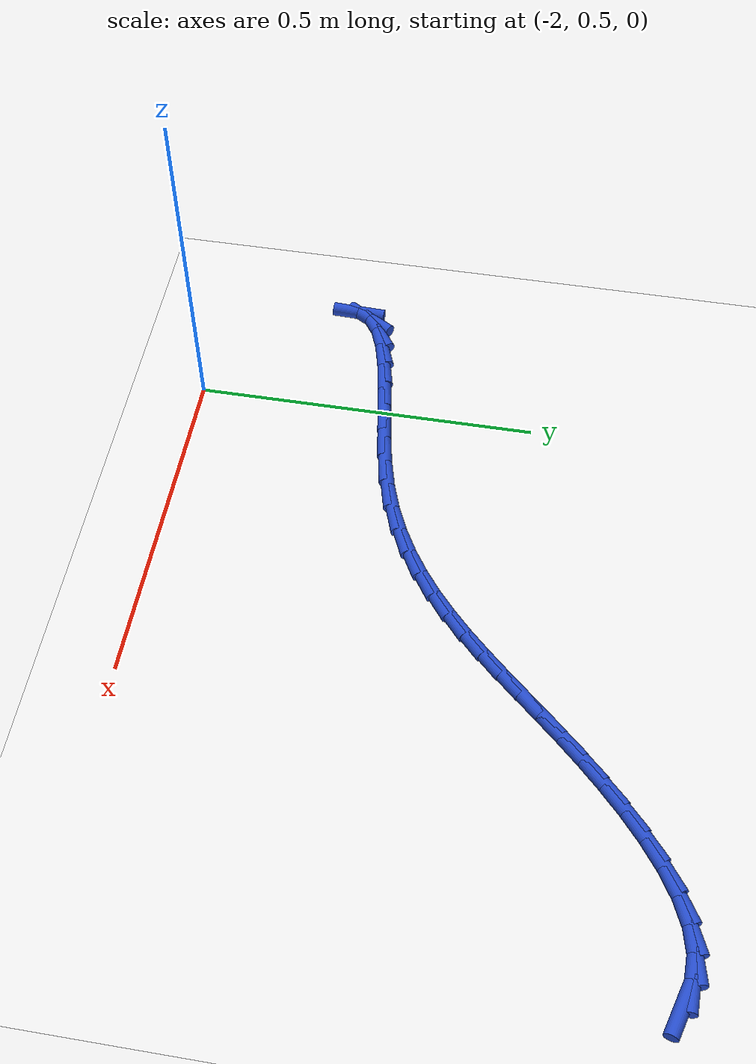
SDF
<sdf version="1.6">
 <world name="default">
  <model name="ground_plane">
   <static>1</static>
   <link name="link">
    <collision name="collision">
     <geometry><plane><normal>0 0 1</normal><size>100 100</size></plane></geometry>
     <surface><friction><ode><mu>100</mu><mu2>50</mu2></ode></friction></surface>
    </collision>
    <visual name="visual">
     <cast_shadows>0</cast_shadows>
     <geometry><plane><normal>0 0 1</normal><size>100 100</size></plane></geometry>
     <material>
      <script><uri>file://media/materials/scripts/gazebo.material</uri><name>Gazebo/WhiteGlow</name></script>
     </material>
    </visual>
   </link>
  </model>
  <model name="line">
   <link name="link_49">
    <pose>-1.1646027688818992 1.2761887162323287 0.01 0 1.57 -0.28708389258035083</pose>
    <collision name="collision">
     <geometry><cylinder><radius>0.01</radius><length>0.08</length></cylinder></geometry>
    </collision>
    <visual name="visual">
     <material>
      <script><name>Gazebo/Blue</name><uri>file://media/materials/scripts/gazebo.material</uri></script>
     </material>
     <geometry><cylinder><radius>0.01</radius><length>0.08</length></cylinder></geometry>
    </visual>
   </link>
   <link name="link_50">
    <pose>-1.196601782694874 1.2856360971161382 0.01 0 1.57 -0.02963732144660762</pose>
    <collision name="collision">
     <geometry><cylinder><radius>0.01</radius><length>0.08</length></cylinder></geometry>
    </collision>
    <visual name="visual">
     <material>
      <script><name>Gazebo/Blue</name><uri>file://media/materials/scripts/gazebo.material</uri></script>
     </material>
     <geometry><cylinder><radius>0.01</radius><length>0.08</length></cylinder></geometry>
    </visual>
   </link>
   <link name="link_51">
    <pose>-1.2298794530847537 1.2866226469996043 0.01 0 1.57 0.22104520568271016</pose>
    <collision name="collision">
     <geometry><cylinder><radius>0.01</radius><length>0.08</length></cylinder></geometry>
    </collision>
    <visual name="visual">
     <material>
      <script><name>Gazebo/Blue</name><uri>file://media/materials/scripts/gazebo.material</uri></script>
     </material>
     <geometry><cylinder><radius>0.01</radius><length>0.08</length></cylinder></geometry>
    </visual>
   </link>
   <link name="link_52">
    <pose>-1.2643827046136848 1.278869174637991 0.01 0 1.57 0.4062692847931407</pose>
    <collision name="collision">
     <geometry><cylinder><radius>0.01</radius><length>0.08</length></cylinder></geometry>
    </collision>
    <visual name="visual">
     <material>
      <script><name>Gazebo/Blue</name><uri>file://media/materials/scripts/gazebo.material</uri></script>
     </material>
     <geometry><cylinder><radius>0.01</radius><length>0.08</length></cylinder></geometry>
    </visual>
   </link>
   <link name="link_53">
    <pose>-1.2995495854542731 1.2637402804744995 0.01 0 1.57 0.5372585897245692</pose>
    <collision name="collision">
     <geometry><cylinder><radius>0.01</radius><length>0.08</length></cylinder></geometry>
    </collision>
    <visual name="visual">
     <material>
      <script><name>Gazebo/Blue</name><uri>file://media/materials/scripts/gazebo.material</uri></script>
     </material>
     <geometry><cylinder><radius>0.01</radius><length>0.08</length></cylinder></geometry>
    </visual>
   </link>
   <link name="link_54">
    <pose>-1.334768834057124 1.2427598470743213 0.01 0 1.57 0.6306912610560182</pose>
    <collision name="collision">
     <geometry><cylinder><radius>0.01</radius><length>0.08</length></cylinder></geometry>
    </collision>
    <visual name="visual">
     <material>
      <script><name>Gazebo/Blue</name><uri>file://media/materials/scripts/gazebo.material</uri></script>
     </material>
     <geometry><cylinder><radius>0.01</radius><length>0.08</length></cylinder></geometry>
    </visual>
   </link>
   <link name="link_55">
    <pose>-1.3694291888728427 1.2174517570026493 0.01 0 1.57 0.6983112795040243</pose>
    <collision name="collision">
     <geometry><cylinder><radius>0.01</radius><length>0.08</length></cylinder></geometry>
    </collision>
    <visual name="visual">
     <material>
      <script><name>Gazebo/Blue</name><uri>file://media/materials/scripts/gazebo.material</uri></script>
     </material>
     <geometry><cylinder><radius>0.01</radius><length>0.08</length></cylinder></geometry>
    </visual>
   </link>
   <link name="link_56">
    <pose>-1.4029193883520341 1.1893398928246766 0.01 0 1.57 0.7476247107921191</pose>
    <collision name="collision">
     <geometry><cylinder><radius>0.01</radius><length>0.08</length></cylinder></geometry>
    </collision>
    <visual name="visual">
     <material>
      <script><name>Gazebo/Blue</name><uri>file://media/materials/scripts/gazebo.material</uri></script>
     </material>
     <geometry><cylinder><radius>0.01</radius><length>0.08</length></cylinder></geometry>
    </visual>
   </link>
   <link name="link_57">
    <pose>-1.434648986679044 1.159921176643715 0.01 0 1.57 0.7852584218598492</pose>
    <collision name="collision">
     <geometry><cylinder><radius>0.01</radius><length>0.08</length></cylinder></geometry>
    </collision>
    <visual name="visual">
     <material>
      <script><name>Gazebo/Blue</name><uri>file://media/materials/scripts/gazebo.material</uri></script>
     </material>
     <geometry><cylinder><radius>0.01</radius><length>0.08</length></cylinder></geometry>
    </visual>
   </link>
   <link name="link_58">
    <pose>-1.464507088755456 1.130071418235588 0.01 0 1.57 0.8140115126762537</pose>
    <collision name="collision">
     <geometry><cylinder><radius>0.01</radius><length>0.08</length></cylinder></geometry>
    </collision>
    <visual name="visual">
     <material>
      <script><name>Gazebo/Blue</name><uri>file://media/materials/scripts/gazebo.material</uri></script>
     </material>
     <geometry><cylinder><radius>0.01</radius><length>0.08</length></cylinder></geometry>
    </visual>
   </link>
   <link name="link_59">
    <pose>-1.4928627888550439 1.1000447469043513 0.01 0 1.57 0.8331291239726535</pose>
    <collision name="collision">
     <geometry><cylinder><radius>0.01</radius><length>0.08</length></cylinder></geometry>
    </collision>
    <visual name="visual">
     <material>
      <script><name>Gazebo/Blue</name><uri>file://media/materials/scripts/gazebo.material</uri></script>
     </material>
     <geometry><cylinder><radius>0.01</radius><length>0.08</length></cylinder></geometry>
    </visual>
   </link>
   <link name="link_60">
    <pose>-1.5201060847163335 1.0700682178632936 0.01 0 1.57 0.8418736132932424</pose>
    <collision name="collision">
     <geometry><cylinder><radius>0.01</radius><length>0.08</length></cylinder></geometry>
    </collision>
    <visual name="visual">
     <material>
      <script><name>Gazebo/Blue</name><uri>file://media/materials/scripts/gazebo.material</uri></script>
     </material>
     <geometry><cylinder><radius>0.01</radius><length>0.08</length></cylinder></geometry>
    </visual>
   </link>
   <link name="link_61">
    <pose>-1.5466269740778507 1.0403688863257041 0.01 0 1.57 0.8396317648700947</pose>
    <collision name="collision">
     <geometry><cylinder><radius>0.01</radius><length>0.08</length></cylinder></geometry>
    </collision>
    <visual name="visual">
     <material>
      <script><name>Gazebo/Blue</name><uri>file://media/materials/scripts/gazebo.material</uri></script>
     </material>
     <geometry><cylinder><radius>0.01</radius><length>0.08</length></cylinder></geometry>
    </visual>
   </link>
   <link name="link_62">
    <pose>-1.5728154546781208 1.0111738075048717 0.01 0 1.57 0.8259116765790597</pose>
    <collision name="collision">
     <geometry><cylinder><radius>0.01</radius><length>0.08</length></cylinder></geometry>
    </collision>
    <visual name="visual">
     <material>
      <script><name>Gazebo/Blue</name><uri>file://media/materials/scripts/gazebo.material</uri></script>
     </material>
     <geometry><cylinder><radius>0.01</radius><length>0.08</length></cylinder></geometry>
    </visual>
   </link>
   <link name="link_63">
    <pose>-1.5990615242556712 0.9827100366140864 0.01 0 1.57 0.8003742663989084</pose>
    <collision name="collision">
     <geometry><cylinder><radius>0.01</radius><length>0.08</length></cylinder></geometry>
    </collision>
    <visual name="visual">
     <material>
      <script><name>Gazebo/Blue</name><uri>file://media/materials/scripts/gazebo.material</uri></script>
     </material>
     <geometry><cylinder><radius>0.01</radius><length>0.08</length></cylinder></geometry>
    </visual>
   </link>
   <link name="link_64">
    <pose>-1.625755180549027 0.955204628866636 0.01 0 1.57 0.7629094077563804</pose>
    <collision name="collision">
     <geometry><cylinder><radius>0.01</radius><length>0.08</length></cylinder></geometry>
    </collision>
    <visual name="visual">
     <material>
      <script><name>Gazebo/Blue</name><uri>file://media/materials/scripts/gazebo.material</uri></script>
     </material>
     <geometry><cylinder><radius>0.01</radius><length>0.08</length></cylinder></geometry>
    </visual>
   </link>
   <link name="link_65">
    <pose>-1.6532864212967147 0.9288846394758106 0.01 0 1.57 0.7137570551265782</pose>
    <collision name="collision">
     <geometry><cylinder><radius>0.01</radius><length>0.08</length></cylinder></geometry>
    </collision>
    <visual name="visual">
     <material>
      <script><name>Gazebo/Blue</name><uri>file://media/materials/scripts/gazebo.material</uri></script>
     </material>
     <geometry><cylinder><radius>0.01</radius><length>0.08</length></cylinder></geometry>
    </visual>
   </link>
   <link name="link_66">
    <pose>-1.6820452442372589 0.9039771236548988 0.01 0 1.57 0.6536557117875759</pose>
    <collision name="collision">
     <geometry><cylinder><radius>0.01</radius><length>0.08</length></cylinder></geometry>
    </collision>
    <visual name="visual">
     <material>
      <script><name>Gazebo/Blue</name><uri>file://media/materials/scripts/gazebo.material</uri></script>
     </material>
     <geometry><cylinder><radius>0.01</radius><length>0.08</length></cylinder></geometry>
    </visual>
   </link>
   <link name="link_67">
    <pose>-1.7124216471091882 0.8807091366171901 0.01 0 1.57 0.583974523613041</pose>
    <collision name="collision">
     <geometry><cylinder><radius>0.01</radius><length>0.08</length></cylinder></geometry>
    </collision>
    <visual name="visual">
     <material>
      <script><name>Gazebo/Blue</name><uri>file://media/materials/scripts/gazebo.material</uri></script>
     </material>
     <geometry><cylinder><radius>0.01</radius><length>0.08</length></cylinder></geometry>
    </visual>
   </link>
   <link name="link_68">
    <pose>-1.7448056276510266 0.8593077335759732 0.01 0 1.57 0.5067617992801143</pose>
    <collision name="collision">
     <geometry><cylinder><radius>0.01</radius><length>0.08</length></cylinder></geometry>
    </collision>
    <visual name="visual">
     <material>
      <script><name>Gazebo/Blue</name><uri>file://media/materials/scripts/gazebo.material</uri></script>
     </material>
     <geometry><cylinder><radius>0.01</radius><length>0.08</length></cylinder></geometry>
    </visual>
   </link>
   <link name="link_69">
    <pose>-1.7795871836013004 0.8399999697445373 0.01 0 1.57 0.4246445764410981</pose>
    <collision name="collision">
     <geometry><cylinder><radius>0.01</radius><length>0.08</length></cylinder></geometry>
    </collision>
    <visual name="visual">
     <material>
      <script><name>Gazebo/Blue</name><uri>file://media/materials/scripts/gazebo.material</uri></script>
     </material>
     <geometry><cylinder><radius>0.01</radius><length>0.08</length></cylinder></geometry>
    </visual>
   </link>
   <link name="link_70">
    <pose>-1.817156312698536 0.823012900336172 0.01 0 1.57 0.34056067282267916</pose>
    <collision name="collision">
     <geometry><cylinder><radius>0.01</radius><length>0.08</length></cylinder></geometry>
    </collision>
    <visual name="visual">
     <material>
      <script><name>Gazebo/Blue</name><uri>file://media/materials/scripts/gazebo.material</uri></script>
     </material>
     <geometry><cylinder><radius>0.01</radius><length>0.08</length></cylinder></geometry>
    </visual>
   </link>
   <link name="link_71">
    <pose>-1.85790301268126 0.8085735805641662 0.01 0 1.57 0.25893469303975775</pose>
    <collision name="collision">
     <geometry><cylinder><radius>0.01</radius><length>0.08</length></cylinder></geometry>
    </collision>
    <visual name="visual">
     <material>
      <script><name>Gazebo/Blue</name><uri>file://media/materials/scripts/gazebo.material</uri></script>
     </material>
     <geometry><cylinder><radius>0.01</radius><length>0.08</length></cylinder></geometry>
    </visual>
   </link>
   <link name="link_72">
    <pose>-1.9021229250513434 0.796860558507182 0.01 0 1.57 0.19965081665937945</pose>
    <collision name="collision">
     <geometry><cylinder><radius>0.01</radius><length>0.08</length></cylinder></geometry>
    </collision>
    <visual name="visual">
     <material>
      <script><name>Gazebo/Blue</name><uri>file://media/materials/scripts/gazebo.material</uri></script>
     </material>
     <geometry><cylinder><radius>0.01</radius><length>0.08</length></cylinder></geometry>
    </visual>
   </link>
   <link name="link_73">
    <pose>-1.9488524168520376 0.7874050080176257 0.01 0 1.57 0.16989951040424894</pose>
    <collision name="collision">
     <geometry><cylinder><radius>0.01</radius><length>0.08</length></cylinder></geometry>
    </collision>
    <visual name="visual">
     <material>
      <script><name>Gazebo/Blue</name><uri>file://media/materials/scripts/gazebo.material</uri></script>
     </material>
     <geometry><cylinder><radius>0.01</radius><length>0.08</length></cylinder></geometry>
    </visual>
   </link>
   <link name="link_74">
    <pose>-1.9962310133566203 0.7792770499638326 0.01 0 1.57 0.16617751286514482</pose>
    <collision name="collision">
     <geometry><cylinder><radius>0.01</radius><length>0.08</length></cylinder></geometry>
    </collision>
    <visual name="visual">
     <material>
      <script><name>Gazebo/Blue</name><uri>file://media/materials/scripts/gazebo.material</uri></script>
     </material>
     <geometry><cylinder><radius>0.01</radius><length>0.08</length></cylinder></geometry>
    </visual>
   </link>
   <link name="link_75">
    <pose>-2.0423789979957303 0.7715369132696901 0.01 0 1.57 0.19033812575177786</pose>
    <collision name="collision">
     <geometry><cylinder><radius>0.01</radius><length>0.08</length></cylinder></geometry>
    </collision>
    <visual name="visual">
     <material>
      <script><name>Gazebo/Blue</name><uri>file://media/materials/scripts/gazebo.material</uri></script>
     </material>
     <geometry><cylinder><radius>0.01</radius><length>0.08</length></cylinder></geometry>
    </visual>
   </link>
   <link name="link_76">
    <pose>-2.085416654200007 0.7632448268590861 0.01 0 1.57 0.2516933184098098</pose>
    <collision name="collision">
     <geometry><cylinder><radius>0.01</radius><length>0.08</length></cylinder></geometry>
    </collision>
    <visual name="visual">
     <material>
      <script><name>Gazebo/Blue</name><uri>file://media/materials/scripts/gazebo.material</uri></script>
     </material>
     <geometry><cylinder><radius>0.01</radius><length>0.08</length></cylinder></geometry>
    </visual>
   </link>
   <link name="link_77">
    <pose>-2.123464265400093 0.7534610196559086 0.01 0 1.57 0.3734124134598107</pose>
    <collision name="collision">
     <geometry><cylinder><radius>0.01</radius><length>0.08</length></cylinder></geometry>
    </collision>
    <visual name="visual">
     <material>
      <script><name>Gazebo/Blue</name><uri>file://media/materials/scripts/gazebo.material</uri></script>
     </material>
     <geometry><cylinder><radius>0.01</radius><length>0.08</length></cylinder></geometry>
    </visual>
   </link>
   <link name="link_78">
    <pose>-2.1546421150266255 0.7412457205840448 0.01 0 1.57 0.60732761095877</pose>
    <collision name="collision">
     <geometry><cylinder><radius>0.01</radius><length>0.08</length></cylinder></geometry>
    </collision>
    <visual name="visual">
     <material>
      <script><name>Gazebo/Blue</name><uri>file://media/materials/scripts/gazebo.material</uri></script>
     </material>
     <geometry><cylinder><radius>0.01</radius><length>0.08</length></cylinder></geometry>
    </visual>
   </link>
   <link name="link_79">
    <pose>-2.1770704865102455 0.7256591585673826 0.01 0 1.57 1.0334572947745657</pose>
    <collision name="collision">
     <geometry><cylinder><radius>0.01</radius><length>0.08</length></cylinder></geometry>
    </collision>
    <visual name="visual">
     <material>
      <script><name>Gazebo/Blue</name><uri>file://media/materials/scripts/gazebo.material</uri></script>
     </material>
     <geometry><cylinder><radius>0.01</radius><length>0.08</length></cylinder></geometry>
    </visual>
   </link>
   <link name="link_80">
    <pose>-2.1889148319844773 0.7057800345244812 0.01 0 1.57 1.5303227682311096</pose>
    <collision name="collision">
     <geometry><cylinder><radius>0.01</radius><length>0.08</length></cylinder></geometry>
    </collision>
    <visual name="visual">
     <material>
      <script><name>Gazebo/Blue</name><uri>file://media/materials/scripts/gazebo.material</uri></script>
     </material>
     <geometry><cylinder><radius>0.01</radius><length>0.08</length></cylinder></geometry>
    </visual>
   </link>
  </model>
 </world>
</sdf>
